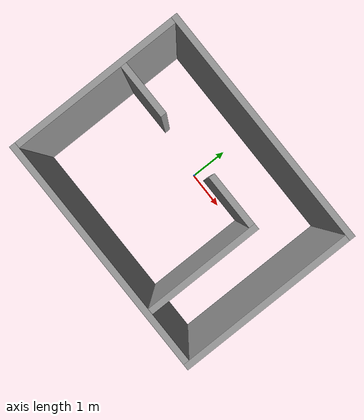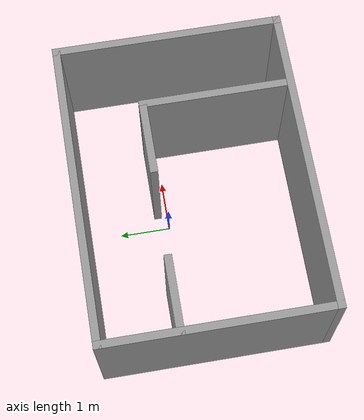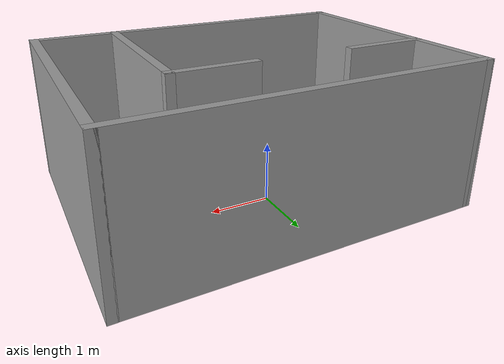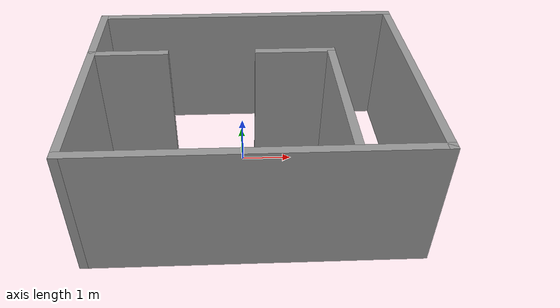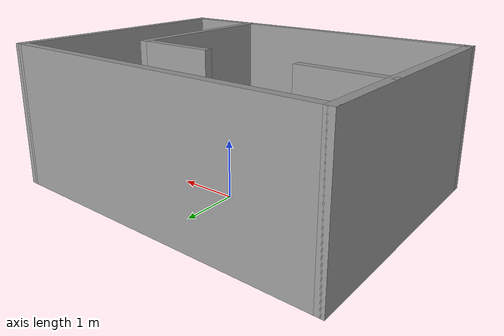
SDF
<?xml version='1.0'?>
<sdf version='1.6'>
  <model name='Builder1'>
    <pose frame=''>0.13539 -0.500799 0 0 -0 0</pose>
    <link name='Wall_32'>
      <collision name='Wall_32_Collision'>
        <geometry>
          <box>
            <size>6 0.15 2.5</size>
          </box>
        </geometry>
        <pose frame=''>0 0 1.25 0 -0 0</pose>
      </collision>
      <visual name='Wall_32_Visual'>
        <pose frame=''>0 0 1.25 0 -0 0</pose>
        <geometry>
          <box>
            <size>6 0.15 2.5</size>
          </box>
        </geometry>
        <material>
          <script>
            <uri>file://media/materials/scripts/gazebo.material</uri>
            <name>Gazebo/Grey</name>
          </script>
          <ambient>1 1 1 1</ambient>
        </material>
        <meta>
          <layer>0</layer>
        </meta>
      </visual>
      <pose frame=''>-0 2.175 0 0 -0 0</pose>
    </link>
    <link name='Wall_33'>
      <collision name='Wall_33_Collision'>
        <geometry>
          <box>
            <size>4.5 0.15 2.5</size>
          </box>
        </geometry>
        <pose frame=''>0 0 1.25 0 -0 0</pose>
      </collision>
      <visual name='Wall_33_Visual'>
        <pose frame=''>0 0 1.25 0 -0 0</pose>
        <geometry>
          <box>
            <size>4.5 0.15 2.5</size>
          </box>
        </geometry>
        <material>
          <script>
            <uri>file://media/materials/scripts/gazebo.material</uri>
            <name>Gazebo/Grey</name>
          </script>
          <ambient>1 1 1 1</ambient>
        </material>
        <meta>
          <layer>0</layer>
        </meta>
      </visual>
      <pose frame=''>2.925 0 0 0 -0 -1.5708</pose>
    </link>
    <link name='Wall_34'>
      <collision name='Wall_34_Collision'>
        <geometry>
          <box>
            <size>6 0.15 2.5</size>
          </box>
        </geometry>
        <pose frame=''>0 0 1.25 0 -0 0</pose>
      </collision>
      <visual name='Wall_34_Visual'>
        <pose frame=''>0 0 1.25 0 -0 0</pose>
        <geometry>
          <box>
            <size>6 0.15 2.5</size>
          </box>
        </geometry>
        <material>
          <script>
            <uri>file://media/materials/scripts/gazebo.material</uri>
            <name>Gazebo/Grey</name>
          </script>
          <ambient>1 1 1 1</ambient>
        </material>
        <meta>
          <layer>0</layer>
        </meta>
      </visual>
      <pose frame=''>-0 -2.175 0 0 -0 3.14159</pose>
    </link>
    <link name='Wall_35'>
      <collision name='Wall_35_Collision'>
        <geometry>
          <box>
            <size>4.5 0.15 2.5</size>
          </box>
        </geometry>
        <pose frame=''>0 0 1.25 0 -0 0</pose>
      </collision>
      <visual name='Wall_35_Visual'>
        <pose frame=''>0 0 1.25 0 -0 0</pose>
        <geometry>
          <box>
            <size>4.5 0.15 2.5</size>
          </box>
        </geometry>
        <material>
          <script>
            <uri>file://media/materials/scripts/gazebo.material</uri>
            <name>Gazebo/Grey</name>
          </script>
          <ambient>1 1 1 1</ambient>
        </material>
        <meta>
          <layer>0</layer>
        </meta>
      </visual>
      <pose frame=''>-2.925 0 0 0 -0 1.5708</pose>
    </link>
    <link name='Wall_39'>
      <collision name='Wall_39_Collision'>
        <geometry>
          <box>
            <size>3 0.15 2.5</size>
          </box>
        </geometry>
        <pose frame=''>0 0 1.25 0 -0 0</pose>
      </collision>
      <visual name='Wall_39_Visual'>
        <pose frame=''>0 0 1.25 0 -0 0</pose>
        <geometry>
          <box>
            <size>3 0.15 2.5</size>
          </box>
        </geometry>
        <material>
          <script>
            <uri>file://media/materials/scripts/gazebo.material</uri>
            <name>Gazebo/Grey</name>
          </script>
          <ambient>1 1 1 1</ambient>
        </material>
        <meta>
          <layer>0</layer>
        </meta>
      </visual>
      <pose frame=''>1.54637 -0.734494 0 0 -0 1.5708</pose>
    </link>
    <link name='Wall_41'>
      <collision name='Wall_41_Collision'>
        <geometry>
          <box>
            <size>1.5 0.15 2.5</size>
          </box>
        </geometry>
        <pose frame=''>0 0 1.25 0 -0 0</pose>
      </collision>
      <visual name='Wall_41_Visual'>
        <pose frame=''>0 0 1.25 0 -0 0</pose>
        <geometry>
          <box>
            <size>1.5 0.15 2.5</size>
          </box>
        </geometry>
        <material>
          <script>
            <uri>file://media/materials/scripts/gazebo.material</uri>
            <name>Gazebo/Grey</name>
          </script>
          <ambient>1 1 1 1</ambient>
        </material>
        <meta>
          <layer>0</layer>
        </meta>
      </visual>
      <pose frame=''>0.871372 0.690506 0 0 -0 3.14159</pose>
    </link>
    <link name='Wall_43'>
      <collision name='Wall_43_Collision'>
        <geometry>
          <box>
            <size>1.5 0.15 2.5</size>
          </box>
        </geometry>
        <pose frame=''>0 0 1.25 0 -0 0</pose>
      </collision>
      <visual name='Wall_43_Visual'>
        <pose frame=''>0 0 1.25 0 -0 0</pose>
        <geometry>
          <box>
            <size>1.5 0.15 2.5</size>
          </box>
        </geometry>
        <material>
          <script>
            <uri>file://media/materials/scripts/gazebo.material</uri>
            <name>Gazebo/Grey</name>
          </script>
          <ambient>1 1 1 1</ambient>
        </material>
        <meta>
          <layer>0</layer>
        </meta>
      </visual>
      <pose frame=''>-2.25 0.699751 0 0 -0 0</pose>
    </link>
    <static>1</static>
  </model>
</sdf>
